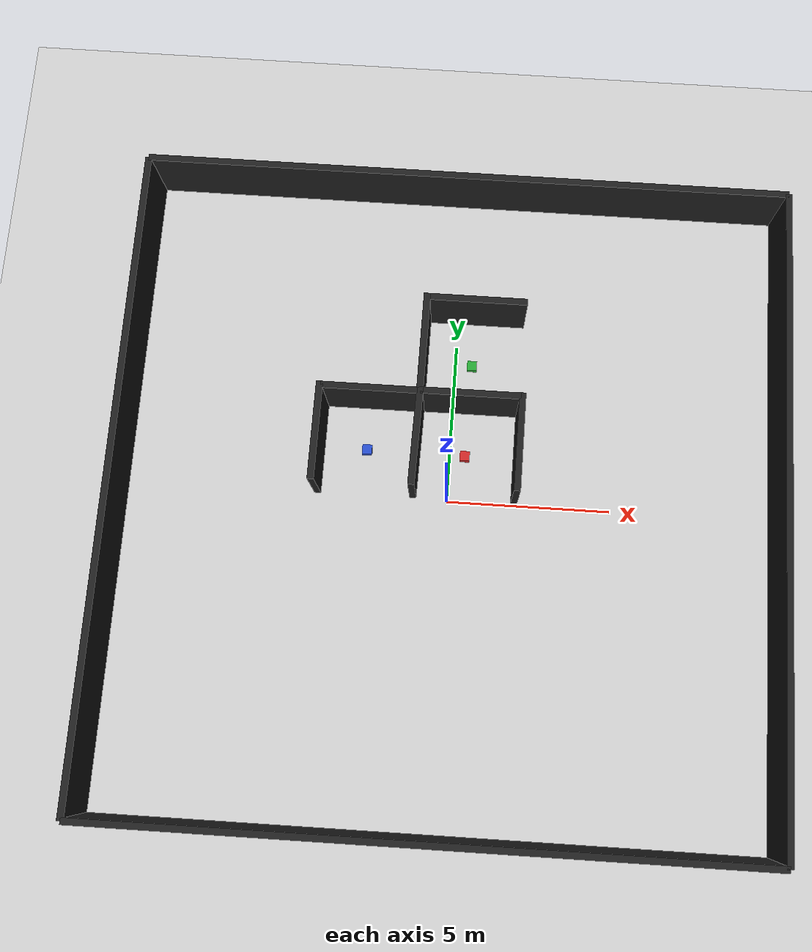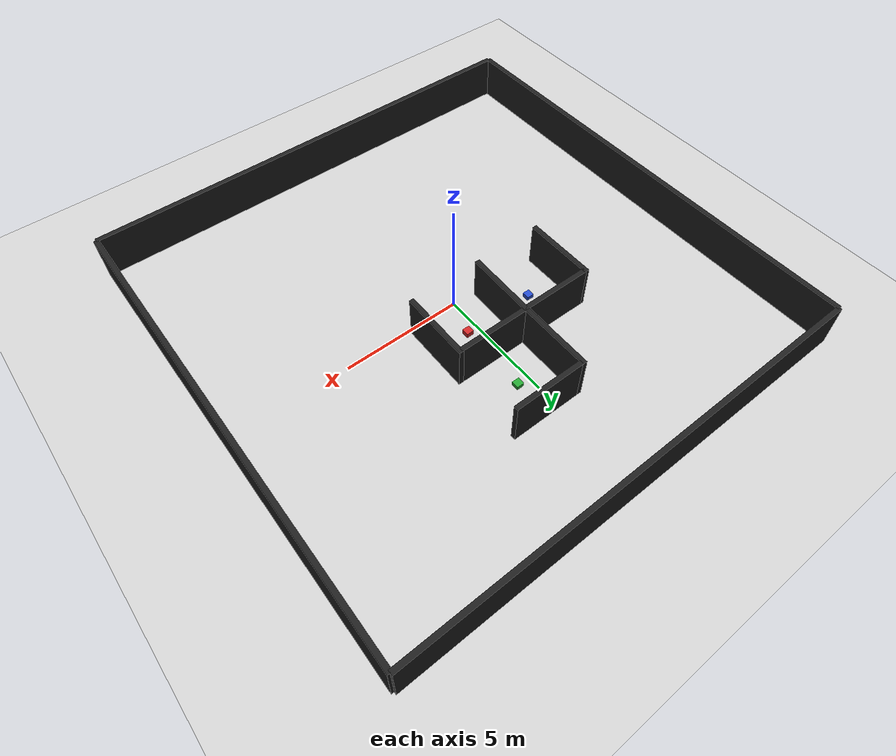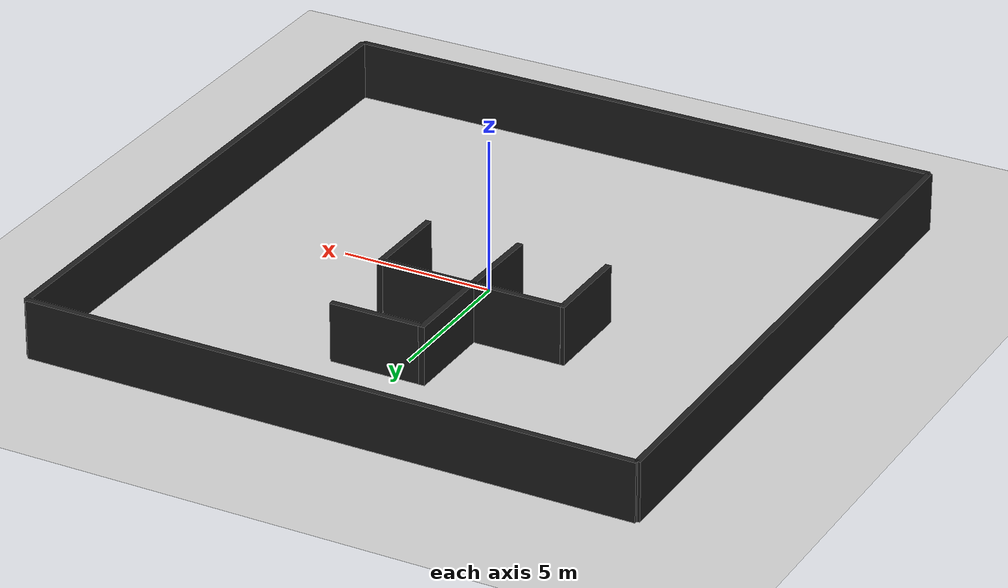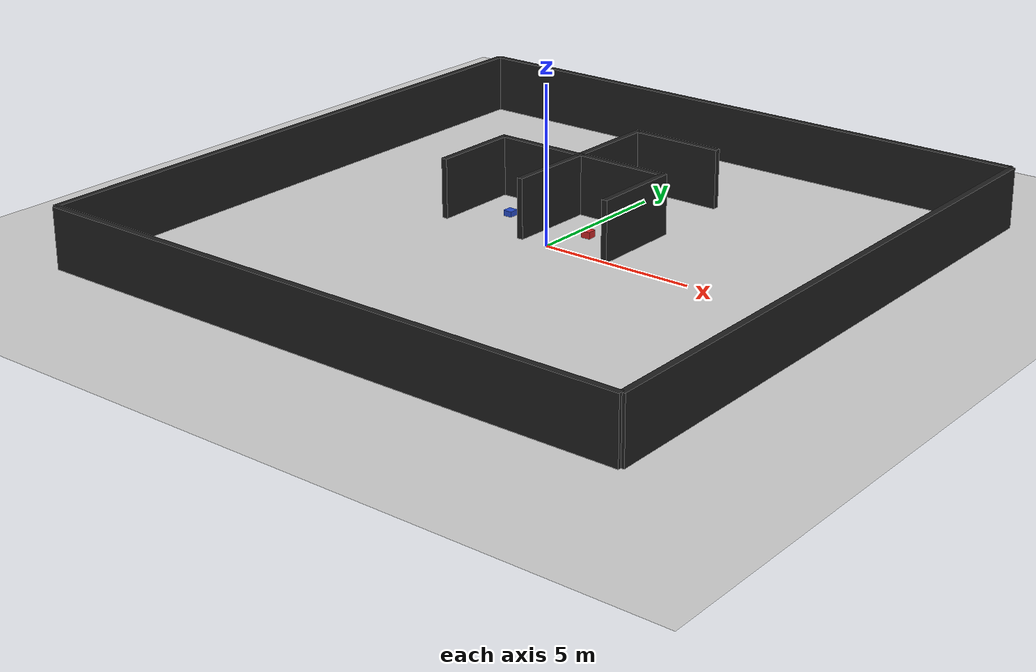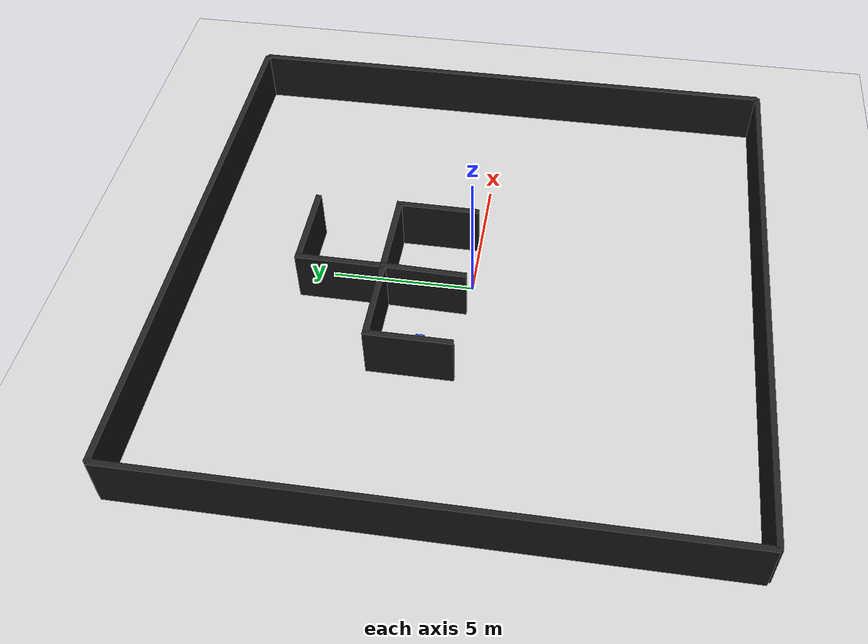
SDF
<sdf version="1.4">
 <world name="default">
  <light name="sun" type="directional">
   <pose>0 0 10 0 -0 0</pose>
   <diffuse>0.8 0.8 0.8 1</diffuse>
   <specular>0.2 0.2 0.2 1</specular>
   <attenuation>
    <range>1000</range>
    <constant>0.9</constant>
    <linear>0.01</linear>
    <quadratic>0.001</quadratic>
   </attenuation>
   <direction>-0.5 0.1 -0.9</direction>
  </light>
  <model name="ground_plane">
   <static>1</static>
   <link name="link">
    <collision name="collision">
     <geometry><plane><normal>0 0 1</normal><size>100 100</size></plane></geometry>
     <surface><friction><ode><mu>100</mu><mu2>50</mu2></ode></friction></surface>
    </collision>
    <visual name="visual">
     <cast_shadows>0</cast_shadows>
     <geometry><plane><normal>0 0 1</normal><size>100 100</size></plane></geometry>
     <material>
      <script><uri>file://media/materials/scripts/gazebo.material</uri><name>Gazebo/Grey</name></script>
     </material>
    </visual>
    <velocity_decay><linear>0</linear><angular>0</angular></velocity_decay>
   </link>
  </model>
  <physics type="ode">
   <max_step_size>0.001</max_step_size>
   <real_time_factor>1</real_time_factor>
   <real_time_update_rate>1000</real_time_update_rate>
   <gravity>0 0 -9.8</gravity>
  </physics>
  <scene><ambient>0.4 0.4 0.4 1</ambient><background>0.7 0.7 0.7 1</background><shadows>1</shadows></scene>
  <spherical_coordinates>
   <surface_model>EARTH_WGS84</surface_model>
   <latitude_deg>0</latitude_deg>
   <longitude_deg>0</longitude_deg>
   <elevation>0</elevation>
   <heading_deg>0</heading_deg>
  </spherical_coordinates>
  <model name="middle_left_wall">
   <static>1</static>
   <link name="link">
    <pose>0 0 1.4 0 -0 0</pose>
    <collision name="collision"><geometry><box><size>3 0.2 2</size></box></geometry></collision>
    <visual name="visual">
     <cast_shadows>0</cast_shadows>
     <geometry><box><size>3 0.2 2</size></box></geometry>
     <material>
      <script><uri>file://media/materials/scripts/gazebo.material</uri><name>Gazebo/Black</name></script>
     </material>
    </visual>
    <velocity_decay><linear>0</linear><angular>0</angular></velocity_decay>
   </link>
   <pose>-2.47999 2.93773 -0.5 0 -0 0</pose>
  </model>
  <model name="middle_right_wall">
   <static>1</static>
   <link name="link">
    <pose>0 0 1.4 0 -0 0</pose>
    <collision name="collision"><geometry><box><size>3 0.2 2</size></box></geometry></collision>
    <visual name="visual">
     <cast_shadows>0</cast_shadows>
     <geometry><box><size>3 0.2 2</size></box></geometry>
     <material>
      <script><uri>file://media/materials/scripts/gazebo.material</uri><name>Gazebo/Black</name></script>
     </material>
    </visual>
    <velocity_decay><linear>0</linear><angular>0</angular></velocity_decay>
   </link>
   <pose>0.511745 2.95278 -0.5 0 -0 0</pose>
  </model>
  <model name="far_wall">
   <static>1</static>
   <link name="link">
    <pose>0 0 1.4 0 -0 0</pose>
    <collision name="collision"><geometry><box><size>3 0.2 2</size></box></geometry></collision>
    <visual name="visual">
     <cast_shadows>0</cast_shadows>
     <geometry><box><size>3 0.2 2</size></box></geometry>
     <material>
      <script><uri>file://media/materials/scripts/gazebo.material</uri><name>Gazebo/Black</name></script>
     </material>
    </visual>
    <velocity_decay><linear>0</linear><angular>0</angular></velocity_decay>
   </link>
   <pose>0.571421 5.93237 -0.5 0 -0 0</pose>
  </model>
  <model name="middle_far_wall">
   <static>1</static>
   <link name="link">
    <pose>0 0 1.4 0 -0 0</pose>
    <collision name="collision"><geometry><box><size>3 0.2 2</size></box></geometry></collision>
    <visual name="visual">
     <cast_shadows>0</cast_shadows>
     <geometry><box><size>3 0.2 2</size></box></geometry>
     <material>
      <script><uri>file://media/materials/scripts/gazebo.material</uri><name>Gazebo/Black</name></script>
     </material>
    </visual>
    <velocity_decay><linear>0</linear><angular>0</angular></velocity_decay>
   </link>
   <pose>-1.00191 4.5331 -0.5 0 -0 1.56473</pose>
  </model>
  <model name="middle_close_wall">
   <static>1</static>
   <link name="link">
    <pose>0 0 1.4 0 -0 0</pose>
    <collision name="collision"><geometry><box><size>3 0.2 2</size></box></geometry></collision>
    <visual name="visual">
     <cast_shadows>0</cast_shadows>
     <geometry><box><size>3 0.2 2</size></box></geometry>
     <material>
      <script><uri>file://media/materials/scripts/gazebo.material</uri><name>Gazebo/Black</name></script>
     </material>
    </visual>
    <velocity_decay><linear>0</linear><angular>0</angular></velocity_decay>
   </link>
   <pose>-1.03939 1.55423 -0.5 0 -0 1.54763</pose>
  </model>
  <model name="right_wall">
   <static>1</static>
   <link name="link">
    <pose>0 0 1.4 0 -0 0</pose>
    <collision name="collision"><geometry><box><size>3 0.2 2</size></box></geometry></collision>
    <visual name="visual">
     <cast_shadows>0</cast_shadows>
     <geometry><box><size>3 0.2 2</size></box></geometry>
     <material>
      <script><uri>file://media/materials/scripts/gazebo.material</uri><name>Gazebo/Black</name></script>
     </material>
    </visual>
    <velocity_decay><linear>0</linear><angular>0</angular></velocity_decay>
   </link>
   <pose>2.0594 1.55785 -0.499999 -0.001313 -0 1.56458</pose>
  </model>
  <model name="left_wall">
   <static>1</static>
   <link name="link">
    <pose>0 0 1.4 0 -0 0</pose>
    <collision name="collision"><geometry><box><size>3 0.2 2</size></box></geometry></collision>
    <visual name="visual">
     <cast_shadows>0</cast_shadows>
     <geometry><box><size>3 0.2 2</size></box></geometry>
     <material>
      <script><uri>file://media/materials/scripts/gazebo.material</uri><name>Gazebo/Black</name></script>
     </material>
    </visual>
    <velocity_decay><linear>0</linear><angular>0</angular></velocity_decay>
   </link>
   <pose>-4.02302 1.53616 -0.5 0 0 -1.57476</pose>
  </model>
  <model name="blue_cube">
   <pose>-2.59188 1.47168 0.0 0 -0 0</pose>
   <link name="link">
    <inertial>
     <mass>1</mass>
     <inertia><ixx>1</ixx><ixy>0</ixy><ixz>0</ixz><iyy>1</iyy><iyz>0</iyz><izz>1</izz></inertia>
    </inertial>
    <collision name="collision"><geometry><box><size>0.3 0.3 0.3</size></box></geometry></collision>
    <visual name="visual">
     <geometry><box><size>0.3 0.3 0.3</size></box></geometry>
     <material>
      <script><uri>file://media/materials/scripts/gazebo.material</uri><name>Gazebo/Blue</name></script>
     </material>
    </visual>
    <velocity_decay><linear>0</linear><angular>0</angular></velocity_decay>
   </link>
   <static>0</static>
  </model>
  <model name="red_cube">
   <pose>0.452091 1.44163 0.04 -3e-06 -4e-06 -1.61559e-27</pose>
   <link name="link">
    <inertial>
     <mass>1</mass>
     <inertia><ixx>1</ixx><ixy>0</ixy><ixz>0</ixz><iyy>1</iyy><iyz>0</iyz><izz>1</izz></inertia>
    </inertial>
    <collision name="collision"><geometry><box><size>0.3 0.3 0.3</size></box></geometry></collision>
    <visual name="visual">
     <geometry><box><size>0.3 0.3 0.3</size></box></geometry>
     <material>
      <script><uri>file://media/materials/scripts/gazebo.material</uri><name>Gazebo/Red</name></script>
     </material>
    </visual>
    <velocity_decay><linear>0</linear><angular>0</angular></velocity_decay>
   </link>
   <static>0</static>
  </model>
  <model name="green_cube">
   <pose>0.501516 4.40437 0.0 0 -0 0</pose>
   <link name="link">
    <inertial>
     <mass>1</mass>
     <inertia><ixx>1</ixx><ixy>0</ixy><ixz>0</ixz><iyy>1</iyy><iyz>0</iyz><izz>1</izz></inertia>
    </inertial>
    <collision name="collision"><geometry><box><size>0.3 0.3 0.3</size></box></geometry></collision>
    <visual name="visual">
     <geometry><box><size>0.3 0.3 0.3</size></box></geometry>
     <material>
      <script><uri>file://media/materials/scripts/gazebo.material</uri><name>Gazebo/Green</name></script>
     </material>
    </visual>
    <velocity_decay><linear>0</linear><angular>0</angular></velocity_decay>
   </link>
   <static>0</static>
  </model>
  <model name="up">
   <static>1</static>
   <link name="link">
    <pose>0 0 1.4 0 -0 0</pose>
    <collision name="collision"><geometry><box><size>20 0.2 2</size></box></geometry></collision>
    <visual name="visual">
     <cast_shadows>0</cast_shadows>
     <geometry><box><size>20 0.2 2</size></box></geometry>
     <material>
      <script><uri>file://media/materials/scripts/gazebo.material</uri><name>Gazebo/Black</name></script>
     </material>
    </visual>
    <velocity_decay><linear>0</linear><angular>0</angular></velocity_decay>
   </link>
   <pose>0 10 -0.5 0 -0 0</pose>
  </model>
  <model name="down">
   <static>1</static>
   <link name="link">
    <pose>0 0 1.4 0 -0 0</pose>
    <collision name="collision"><geometry><box><size>20 0.2 2</size></box></geometry></collision>
    <visual name="visual">
     <cast_shadows>0</cast_shadows>
     <geometry><box><size>20 0.2 2</size></box></geometry>
     <material>
      <script><uri>file://media/materials/scripts/gazebo.material</uri><name>Gazebo/Black</name></script>
     </material>
    </visual>
    <velocity_decay><linear>0</linear><angular>0</angular></velocity_decay>
   </link>
   <pose>0 -10 -0.5 0 -0 0</pose>
  </model>
  <model name="left">
   <static>1</static>
   <link name="link">
    <pose>0 0 1.4 0 -0 0</pose>
    <collision name="collision"><geometry><box><size>20 0.2 2</size></box></geometry></collision>
    <visual name="visual">
     <cast_shadows>0</cast_shadows>
     <geometry><box><size>20 0.2 2</size></box></geometry>
     <material>
      <script><uri>file://media/materials/scripts/gazebo.material</uri><name>Gazebo/Black</name></script>
     </material>
    </visual>
    <velocity_decay><linear>0</linear><angular>0</angular></velocity_decay>
   </link>
   <pose>-10 0 -0.5 0 -0 1.5708</pose>
  </model>
  <model name="right">
   <static>1</static>
   <link name="link">
    <pose>0 0 1.4 0 -0 0</pose>
    <collision name="collision"><geometry><box><size>20 0.2 2</size></box></geometry></collision>
    <visual name="visual">
     <cast_shadows>0</cast_shadows>
     <geometry><box><size>20 0.2 2</size></box></geometry>
     <material>
      <script><uri>file://media/materials/scripts/gazebo.material</uri><name>Gazebo/Black</name></script>
     </material>
    </visual>
    <velocity_decay><linear>0</linear><angular>0</angular></velocity_decay>
   </link>
   <pose>10 0 -0.5 0 -0 1.5708</pose>
  </model>
 </world>
</sdf>
